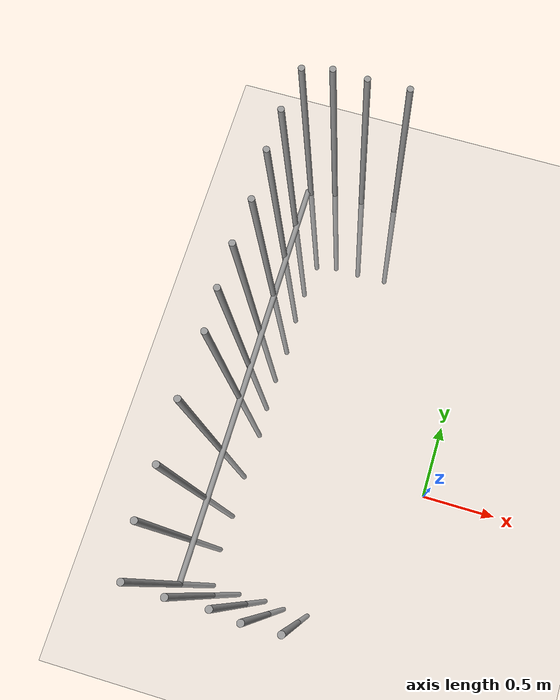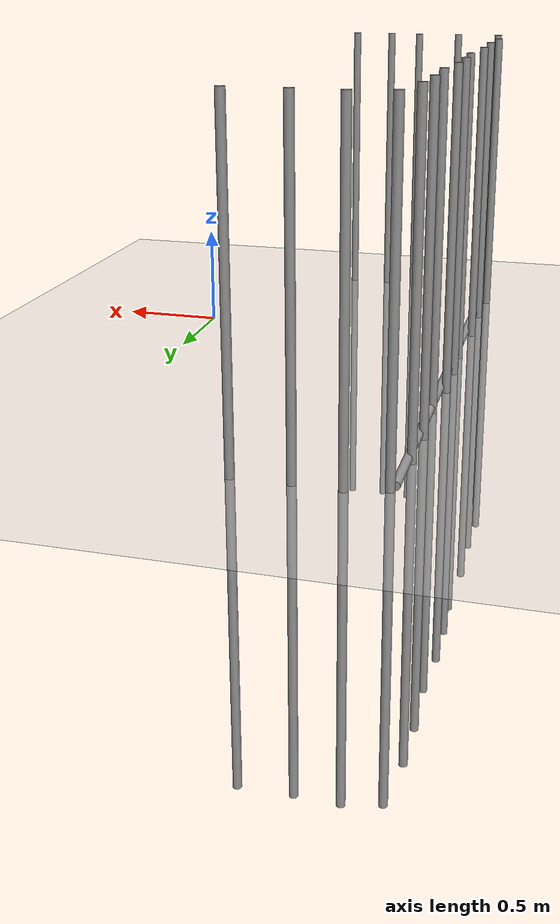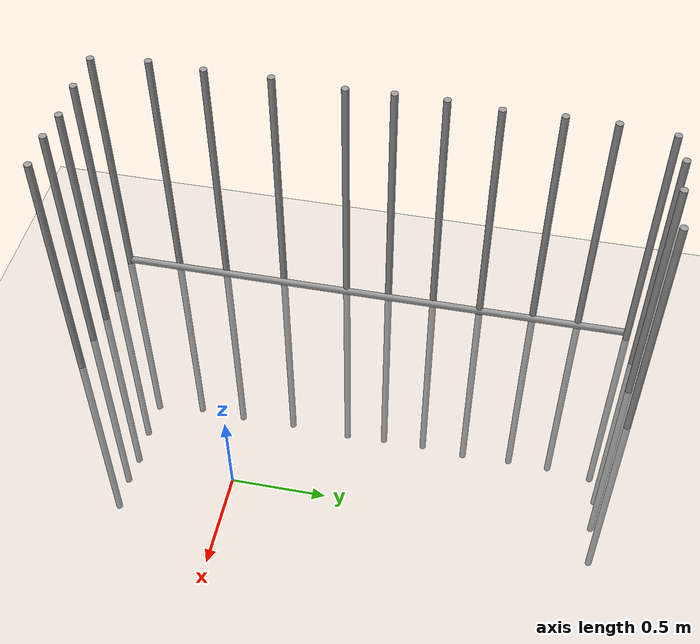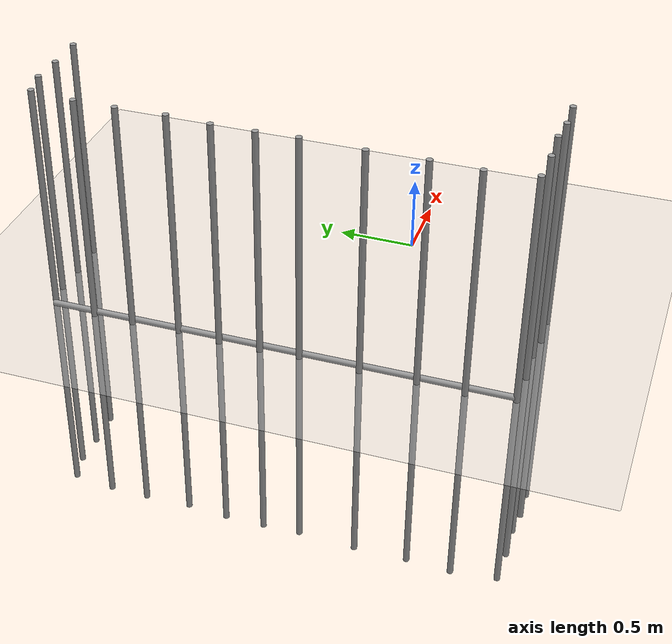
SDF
<sdf version="1.7">
 <world name="default">
  <model name="ground_plane">
   <static>1</static>
   <link name="link">
    <collision name="collision">
     <geometry><plane><normal>0 0 1</normal><size>100 100</size></plane></geometry>
     <surface><friction><ode><mu>100</mu><mu2>50</mu2></ode></friction></surface>
    </collision>
    <visual name="visual">
     <cast_shadows>0</cast_shadows>
     <geometry><plane><normal>0 0 1</normal><size>100 100</size></plane></geometry>
     <material>
      <texture><uri>file:/home/ronin/ws_smart_car/src/world_pkg/world/ground_plane.png</uri></texture>
     </material>
    </visual>
   </link>
  </model>
  <model name="Rebar_cross">
   <static>1</static>
   <link name="link_0">
    <inertial>
     <mass>1</mass>
     <inertia><ixx>0.145833</ixx><ixy>0</ixy><ixz>0</ixz><iyy>0.145833</iyy><iyz>0</iyz><izz>0.125</izz></inertia>
    </inertial>
    <pose>0 0 0 1.57002 1.57 2.4e-05</pose>
    <visual name="visual">
     <geometry><cylinder><radius>0.02</radius><length>3</length></cylinder></geometry>
     <material>
      <lighting>1</lighting>
      <script><uri>file://media/materials/scripts/gazebo.material</uri><name>Gazebo/Grey</name></script>
      <shader type="pixel"><normal_map>__default__</normal_map></shader>
      <ambient>0.3 0.3 0.3 1</ambient>
      <diffuse>0.7 0.7 0.7 1</diffuse>
      <specular>0.01 0.01 0.01 1</specular>
      <emissive>0 0 0 1</emissive>
     </material>
    </visual>
    <collision name="collision">
     <geometry><cylinder><radius>0.02</radius><length>3</length></cylinder></geometry>
     <surface>
      <friction>
       <ode><mu>1</mu><mu2>1</mu2><fdir1>0 0 0</fdir1><slip1>0</slip1><slip2>0</slip2></ode>
       <torsional>
        <coefficient>1</coefficient>
        <patch_radius>0</patch_radius>
        <surface_radius>0</surface_radius>
        <use_patch_radius>1</use_patch_radius>
        <ode><slip>0</slip></ode>
       </torsional>
      </friction>
      <bounce><restitution_coefficient>0</restitution_coefficient><threshold>1e+06</threshold></bounce>
      <contact>
       <collide_without_contact>0</collide_without_contact>
       <collide_without_contact_bitmask>1</collide_without_contact_bitmask>
       <collide_bitmask>1</collide_bitmask>
       <ode>
        <soft_cfm>0</soft_cfm>
        <soft_erp>0.2</soft_erp>
        <kp>1e+13</kp>
        <kd>1</kd>
        <max_vel>0.01</max_vel>
        <min_depth>0</min_depth>
       </ode>
       <bullet>
        <split_impulse>1</split_impulse>
        <split_impulse_penetration_threshold>-0.01</split_impulse_penetration_threshold>
        <soft_cfm>0</soft_cfm>
        <soft_erp>0.2</soft_erp>
        <kp>1e+13</kp>
        <kd>1</kd>
       </bullet>
      </contact>
     </surface>
    </collision>
   </link>
   <static>0</static>
   <pose>-1.42412 0.482138 0.02 1e-06 -0 -4e-06</pose>
  </model>
  <model name="Rebar_vertial_clone_22">
   <static>1</static>
   <link name="link_0">
    <inertial>
     <mass>1</mass>
     <inertia><ixx>0.145833</ixx><ixy>0</ixy><ixz>0</ixz><iyy>0.145833</iyy><iyz>0</iyz><izz>0.125</izz></inertia>
    </inertial>
    <visual name="visual">
     <geometry><cylinder><radius>0.02</radius><length>3</length></cylinder></geometry>
     <material>
      <lighting>1</lighting>
      <script><uri>file://media/materials/scripts/gazebo.material</uri><name>Gazebo/Grey</name></script>
      <shader type="pixel"><normal_map>__default__</normal_map></shader>
      <ambient>0.3 0.3 0.3 1</ambient>
      <diffuse>0.7 0.7 0.7 1</diffuse>
      <specular>0.01 0.01 0.01 1</specular>
      <emissive>0 0 0 1</emissive>
     </material>
    </visual>
    <collision name="collision">
     <geometry><cylinder><radius>0.02</radius><length>3</length></cylinder></geometry>
     <surface>
      <friction>
       <ode><mu>1</mu><mu2>1</mu2><fdir1>0 0 0</fdir1><slip1>0</slip1><slip2>0</slip2></ode>
       <torsional>
        <coefficient>1</coefficient>
        <patch_radius>0</patch_radius>
        <surface_radius>0</surface_radius>
        <use_patch_radius>1</use_patch_radius>
        <ode><slip>0</slip></ode>
       </torsional>
      </friction>
      <bounce><restitution_coefficient>0</restitution_coefficient><threshold>1e+06</threshold></bounce>
      <contact>
       <collide_without_contact>0</collide_without_contact>
       <collide_without_contact_bitmask>1</collide_without_contact_bitmask>
       <collide_bitmask>1</collide_bitmask>
       <ode>
        <soft_cfm>0</soft_cfm>
        <soft_erp>0.2</soft_erp>
        <kp>1e+13</kp>
        <kd>1</kd>
        <max_vel>0.01</max_vel>
        <min_depth>0</min_depth>
       </ode>
       <bullet>
        <split_impulse>1</split_impulse>
        <split_impulse_penetration_threshold>-0.01</split_impulse_penetration_threshold>
        <soft_cfm>0</soft_cfm>
        <soft_erp>0.2</soft_erp>
        <kp>1e+13</kp>
        <kd>1</kd>
       </bullet>
      </contact>
     </surface>
    </collision>
   </link>
   <static>0</static>
   <pose>-0.586605 -1.04477 0.019459 -0.001562 0.001157 0.000983</pose>
  </model>
  <model name="Rebar_vertial_clone_23">
   <static>1</static>
   <link name="link_0">
    <inertial>
     <mass>1</mass>
     <inertia><ixx>0.145833</ixx><ixy>0</ixy><ixz>0</ixz><iyy>0.145833</iyy><iyz>0</iyz><izz>0.125</izz></inertia>
    </inertial>
    <visual name="visual">
     <geometry><cylinder><radius>0.02</radius><length>3</length></cylinder></geometry>
     <material>
      <lighting>1</lighting>
      <script><uri>file://media/materials/scripts/gazebo.material</uri><name>Gazebo/Grey</name></script>
      <shader type="pixel"><normal_map>__default__</normal_map></shader>
      <ambient>0.3 0.3 0.3 1</ambient>
      <diffuse>0.7 0.7 0.7 1</diffuse>
      <specular>0.01 0.01 0.01 1</specular>
      <emissive>0 0 0 1</emissive>
     </material>
    </visual>
    <collision name="collision">
     <geometry><cylinder><radius>0.02</radius><length>3</length></cylinder></geometry>
     <surface>
      <friction>
       <ode><mu>1</mu><mu2>1</mu2><fdir1>0 0 0</fdir1><slip1>0</slip1><slip2>0</slip2></ode>
       <torsional>
        <coefficient>1</coefficient>
        <patch_radius>0</patch_radius>
        <surface_radius>0</surface_radius>
        <use_patch_radius>1</use_patch_radius>
        <ode><slip>0</slip></ode>
       </torsional>
      </friction>
      <bounce><restitution_coefficient>0</restitution_coefficient><threshold>1e+06</threshold></bounce>
      <contact>
       <collide_without_contact>0</collide_without_contact>
       <collide_without_contact_bitmask>1</collide_without_contact_bitmask>
       <collide_bitmask>1</collide_bitmask>
       <ode>
        <soft_cfm>0</soft_cfm>
        <soft_erp>0.2</soft_erp>
        <kp>1e+13</kp>
        <kd>1</kd>
        <max_vel>0.01</max_vel>
        <min_depth>0</min_depth>
       </ode>
       <bullet>
        <split_impulse>1</split_impulse>
        <split_impulse_penetration_threshold>-0.01</split_impulse_penetration_threshold>
        <soft_cfm>0</soft_cfm>
        <soft_erp>0.2</soft_erp>
        <kp>1e+13</kp>
        <kd>1</kd>
       </bullet>
      </contact>
     </surface>
    </collision>
   </link>
   <static>0</static>
   <pose>-0.794408 -1.04841 0.019459 -0.001562 0.001157 0.000983</pose>
  </model>
  <model name="Rebar_vertial_clone_24">
   <static>1</static>
   <link name="link_0">
    <inertial>
     <mass>1</mass>
     <inertia><ixx>0.145833</ixx><ixy>0</ixy><ixz>0</ixz><iyy>0.145833</iyy><iyz>0</iyz><izz>0.125</izz></inertia>
    </inertial>
    <visual name="visual">
     <geometry><cylinder><radius>0.02</radius><length>3</length></cylinder></geometry>
     <material>
      <lighting>1</lighting>
      <script><uri>file://media/materials/scripts/gazebo.material</uri><name>Gazebo/Grey</name></script>
      <shader type="pixel"><normal_map>__default__</normal_map></shader>
      <ambient>0.3 0.3 0.3 1</ambient>
      <diffuse>0.7 0.7 0.7 1</diffuse>
      <specular>0.01 0.01 0.01 1</specular>
      <emissive>0 0 0 1</emissive>
     </material>
    </visual>
    <collision name="collision">
     <geometry><cylinder><radius>0.02</radius><length>3</length></cylinder></geometry>
     <surface>
      <friction>
       <ode><mu>1</mu><mu2>1</mu2><fdir1>0 0 0</fdir1><slip1>0</slip1><slip2>0</slip2></ode>
       <torsional>
        <coefficient>1</coefficient>
        <patch_radius>0</patch_radius>
        <surface_radius>0</surface_radius>
        <use_patch_radius>1</use_patch_radius>
        <ode><slip>0</slip></ode>
       </torsional>
      </friction>
      <bounce><restitution_coefficient>0</restitution_coefficient><threshold>1e+06</threshold></bounce>
      <contact>
       <collide_without_contact>0</collide_without_contact>
       <collide_without_contact_bitmask>1</collide_without_contact_bitmask>
       <collide_bitmask>1</collide_bitmask>
       <ode>
        <soft_cfm>0</soft_cfm>
        <soft_erp>0.2</soft_erp>
        <kp>1e+13</kp>
        <kd>1</kd>
        <max_vel>0.01</max_vel>
        <min_depth>0</min_depth>
       </ode>
       <bullet>
        <split_impulse>1</split_impulse>
        <split_impulse_penetration_threshold>-0.01</split_impulse_penetration_threshold>
        <soft_cfm>0</soft_cfm>
        <soft_erp>0.2</soft_erp>
        <kp>1e+13</kp>
        <kd>1</kd>
       </bullet>
      </contact>
     </surface>
    </collision>
   </link>
   <static>0</static>
   <pose>-0.962909 -1.0295 0.019459 -0.001562 0.001157 0.000983</pose>
  </model>
  <model name="Rebar_vertial_clone_25">
   <static>1</static>
   <link name="link_0">
    <inertial>
     <mass>1</mass>
     <inertia><ixx>0.145833</ixx><ixy>0</ixy><ixz>0</ixz><iyy>0.145833</iyy><iyz>0</iyz><izz>0.125</izz></inertia>
    </inertial>
    <visual name="visual">
     <geometry><cylinder><radius>0.02</radius><length>3</length></cylinder></geometry>
     <material>
      <lighting>1</lighting>
      <script><uri>file://media/materials/scripts/gazebo.material</uri><name>Gazebo/Grey</name></script>
      <shader type="pixel"><normal_map>__default__</normal_map></shader>
      <ambient>0.3 0.3 0.3 1</ambient>
      <diffuse>0.7 0.7 0.7 1</diffuse>
      <specular>0.01 0.01 0.01 1</specular>
      <emissive>0 0 0 1</emissive>
     </material>
    </visual>
    <collision name="collision">
     <geometry><cylinder><radius>0.02</radius><length>3</length></cylinder></geometry>
     <surface>
      <friction>
       <ode><mu>1</mu><mu2>1</mu2><fdir1>0 0 0</fdir1><slip1>0</slip1><slip2>0</slip2></ode>
       <torsional>
        <coefficient>1</coefficient>
        <patch_radius>0</patch_radius>
        <surface_radius>0</surface_radius>
        <use_patch_radius>1</use_patch_radius>
        <ode><slip>0</slip></ode>
       </torsional>
      </friction>
      <bounce><restitution_coefficient>0</restitution_coefficient><threshold>1e+06</threshold></bounce>
      <contact>
       <collide_without_contact>0</collide_without_contact>
       <collide_without_contact_bitmask>1</collide_without_contact_bitmask>
       <collide_bitmask>1</collide_bitmask>
       <ode>
        <soft_cfm>0</soft_cfm>
        <soft_erp>0.2</soft_erp>
        <kp>1e+13</kp>
        <kd>1</kd>
        <max_vel>0.01</max_vel>
        <min_depth>0</min_depth>
       </ode>
       <bullet>
        <split_impulse>1</split_impulse>
        <split_impulse_penetration_threshold>-0.01</split_impulse_penetration_threshold>
        <soft_cfm>0</soft_cfm>
        <soft_erp>0.2</soft_erp>
        <kp>1e+13</kp>
        <kd>1</kd>
       </bullet>
      </contact>
     </surface>
    </collision>
   </link>
   <static>0</static>
   <pose>-1.19146 -1.03655 0.019459 -0.001562 0.001157 0.000983</pose>
  </model>
  <model name="Rebar_vertial_clone_26">
   <static>1</static>
   <link name="link_0">
    <inertial>
     <mass>1</mass>
     <inertia><ixx>0.145833</ixx><ixy>0</ixy><ixz>0</ixz><iyy>0.145833</iyy><iyz>0</iyz><izz>0.125</izz></inertia>
    </inertial>
    <visual name="visual">
     <geometry><cylinder><radius>0.02</radius><length>3</length></cylinder></geometry>
     <material>
      <lighting>1</lighting>
      <script><uri>file://media/materials/scripts/gazebo.material</uri><name>Gazebo/Grey</name></script>
      <shader type="pixel"><normal_map>__default__</normal_map></shader>
      <ambient>0.3 0.3 0.3 1</ambient>
      <diffuse>0.7 0.7 0.7 1</diffuse>
      <specular>0.01 0.01 0.01 1</specular>
      <emissive>0 0 0 1</emissive>
     </material>
    </visual>
    <collision name="collision">
     <geometry><cylinder><radius>0.02</radius><length>3</length></cylinder></geometry>
     <surface>
      <friction>
       <ode><mu>1</mu><mu2>1</mu2><fdir1>0 0 0</fdir1><slip1>0</slip1><slip2>0</slip2></ode>
       <torsional>
        <coefficient>1</coefficient>
        <patch_radius>0</patch_radius>
        <surface_radius>0</surface_radius>
        <use_patch_radius>1</use_patch_radius>
        <ode><slip>0</slip></ode>
       </torsional>
      </friction>
      <bounce><restitution_coefficient>0</restitution_coefficient><threshold>1e+06</threshold></bounce>
      <contact>
       <collide_without_contact>0</collide_without_contact>
       <collide_without_contact_bitmask>1</collide_without_contact_bitmask>
       <collide_bitmask>1</collide_bitmask>
       <ode>
        <soft_cfm>0</soft_cfm>
        <soft_erp>0.2</soft_erp>
        <kp>1e+13</kp>
        <kd>1</kd>
        <max_vel>0.01</max_vel>
        <min_depth>0</min_depth>
       </ode>
       <bullet>
        <split_impulse>1</split_impulse>
        <split_impulse_penetration_threshold>-0.01</split_impulse_penetration_threshold>
        <soft_cfm>0</soft_cfm>
        <soft_erp>0.2</soft_erp>
        <kp>1e+13</kp>
        <kd>1</kd>
       </bullet>
      </contact>
     </surface>
    </collision>
   </link>
   <static>0</static>
   <pose>-1.4229 -1.02769 0.019459 -0.001562 0.001157 0.000983</pose>
  </model>
  <model name="Rebar_vertial_clone_27">
   <static>1</static>
   <link name="link_0">
    <inertial>
     <mass>1</mass>
     <inertia><ixx>0.145833</ixx><ixy>0</ixy><ixz>0</ixz><iyy>0.145833</iyy><iyz>0</iyz><izz>0.125</izz></inertia>
    </inertial>
    <visual name="visual">
     <geometry><cylinder><radius>0.02</radius><length>3</length></cylinder></geometry>
     <material>
      <lighting>1</lighting>
      <script><uri>file://media/materials/scripts/gazebo.material</uri><name>Gazebo/Grey</name></script>
      <shader type="pixel"><normal_map>__default__</normal_map></shader>
      <ambient>0.3 0.3 0.3 1</ambient>
      <diffuse>0.7 0.7 0.7 1</diffuse>
      <specular>0.01 0.01 0.01 1</specular>
      <emissive>0 0 0 1</emissive>
     </material>
    </visual>
    <collision name="collision">
     <geometry><cylinder><radius>0.02</radius><length>3</length></cylinder></geometry>
     <surface>
      <friction>
       <ode><mu>1</mu><mu2>1</mu2><fdir1>0 0 0</fdir1><slip1>0</slip1><slip2>0</slip2></ode>
       <torsional>
        <coefficient>1</coefficient>
        <patch_radius>0</patch_radius>
        <surface_radius>0</surface_radius>
        <use_patch_radius>1</use_patch_radius>
        <ode><slip>0</slip></ode>
       </torsional>
      </friction>
      <bounce><restitution_coefficient>0</restitution_coefficient><threshold>1e+06</threshold></bounce>
      <contact>
       <collide_without_contact>0</collide_without_contact>
       <collide_without_contact_bitmask>1</collide_without_contact_bitmask>
       <collide_bitmask>1</collide_bitmask>
       <ode>
        <soft_cfm>0</soft_cfm>
        <soft_erp>0.2</soft_erp>
        <kp>1e+13</kp>
        <kd>1</kd>
        <max_vel>0.01</max_vel>
        <min_depth>0</min_depth>
       </ode>
       <bullet>
        <split_impulse>1</split_impulse>
        <split_impulse_penetration_threshold>-0.01</split_impulse_penetration_threshold>
        <soft_cfm>0</soft_cfm>
        <soft_erp>0.2</soft_erp>
        <kp>1e+13</kp>
        <kd>1</kd>
       </bullet>
      </contact>
     </surface>
    </collision>
   </link>
   <static>0</static>
   <pose>-1.46033 -0.725347 0.019459 -0.001562 0.001157 0.000983</pose>
  </model>
  <model name="Rebar_vertial_clone_28">
   <static>1</static>
   <link name="link_0">
    <inertial>
     <mass>1</mass>
     <inertia><ixx>0.145833</ixx><ixy>0</ixy><ixz>0</ixz><iyy>0.145833</iyy><iyz>0</iyz><izz>0.125</izz></inertia>
    </inertial>
    <visual name="visual">
     <geometry><cylinder><radius>0.02</radius><length>3</length></cylinder></geometry>
     <material>
      <lighting>1</lighting>
      <script><uri>file://media/materials/scripts/gazebo.material</uri><name>Gazebo/Grey</name></script>
      <shader type="pixel"><normal_map>__default__</normal_map></shader>
      <ambient>0.3 0.3 0.3 1</ambient>
      <diffuse>0.7 0.7 0.7 1</diffuse>
      <specular>0.01 0.01 0.01 1</specular>
      <emissive>0 0 0 1</emissive>
     </material>
    </visual>
    <collision name="collision">
     <geometry><cylinder><radius>0.02</radius><length>3</length></cylinder></geometry>
     <surface>
      <friction>
       <ode><mu>1</mu><mu2>1</mu2><fdir1>0 0 0</fdir1><slip1>0</slip1><slip2>0</slip2></ode>
       <torsional>
        <coefficient>1</coefficient>
        <patch_radius>0</patch_radius>
        <surface_radius>0</surface_radius>
        <use_patch_radius>1</use_patch_radius>
        <ode><slip>0</slip></ode>
       </torsional>
      </friction>
      <bounce><restitution_coefficient>0</restitution_coefficient><threshold>1e+06</threshold></bounce>
      <contact>
       <collide_without_contact>0</collide_without_contact>
       <collide_without_contact_bitmask>1</collide_without_contact_bitmask>
       <collide_bitmask>1</collide_bitmask>
       <ode>
        <soft_cfm>0</soft_cfm>
        <soft_erp>0.2</soft_erp>
        <kp>1e+13</kp>
        <kd>1</kd>
        <max_vel>0.01</max_vel>
        <min_depth>0</min_depth>
       </ode>
       <bullet>
        <split_impulse>1</split_impulse>
        <split_impulse_penetration_threshold>-0.01</split_impulse_penetration_threshold>
        <soft_cfm>0</soft_cfm>
        <soft_erp>0.2</soft_erp>
        <kp>1e+13</kp>
        <kd>1</kd>
       </bullet>
      </contact>
     </surface>
    </collision>
   </link>
   <static>0</static>
   <pose>-1.44844 -0.426685 0.019459 -0.001562 0.001157 0.000983</pose>
  </model>
  <model name="Rebar_vertial_clone_29">
   <static>1</static>
   <link name="link_0">
    <inertial>
     <mass>1</mass>
     <inertia><ixx>0.145833</ixx><ixy>0</ixy><ixz>0</ixz><iyy>0.145833</iyy><iyz>0</iyz><izz>0.125</izz></inertia>
    </inertial>
    <visual name="visual">
     <geometry><cylinder><radius>0.02</radius><length>3</length></cylinder></geometry>
     <material>
      <lighting>1</lighting>
      <script><uri>file://media/materials/scripts/gazebo.material</uri><name>Gazebo/Grey</name></script>
      <shader type="pixel"><normal_map>__default__</normal_map></shader>
      <ambient>0.3 0.3 0.3 1</ambient>
      <diffuse>0.7 0.7 0.7 1</diffuse>
      <specular>0.01 0.01 0.01 1</specular>
      <emissive>0 0 0 1</emissive>
     </material>
    </visual>
    <collision name="collision">
     <geometry><cylinder><radius>0.02</radius><length>3</length></cylinder></geometry>
     <surface>
      <friction>
       <ode><mu>1</mu><mu2>1</mu2><fdir1>0 0 0</fdir1><slip1>0</slip1><slip2>0</slip2></ode>
       <torsional>
        <coefficient>1</coefficient>
        <patch_radius>0</patch_radius>
        <surface_radius>0</surface_radius>
        <use_patch_radius>1</use_patch_radius>
        <ode><slip>0</slip></ode>
       </torsional>
      </friction>
      <bounce><restitution_coefficient>0</restitution_coefficient><threshold>1e+06</threshold></bounce>
      <contact>
       <collide_without_contact>0</collide_without_contact>
       <collide_without_contact_bitmask>1</collide_without_contact_bitmask>
       <collide_bitmask>1</collide_bitmask>
       <ode>
        <soft_cfm>0</soft_cfm>
        <soft_erp>0.2</soft_erp>
        <kp>1e+13</kp>
        <kd>1</kd>
        <max_vel>0.01</max_vel>
        <min_depth>0</min_depth>
       </ode>
       <bullet>
        <split_impulse>1</split_impulse>
        <split_impulse_penetration_threshold>-0.01</split_impulse_penetration_threshold>
        <soft_cfm>0</soft_cfm>
        <soft_erp>0.2</soft_erp>
        <kp>1e+13</kp>
        <kd>1</kd>
       </bullet>
      </contact>
     </surface>
    </collision>
   </link>
   <static>0</static>
   <pose>-1.45536 -0.070402 0.019459 -0.001562 0.001157 0.000983</pose>
  </model>
  <model name="Rebar_vertial_clone_30">
   <static>1</static>
   <link name="link_0">
    <inertial>
     <mass>1</mass>
     <inertia><ixx>0.145833</ixx><ixy>0</ixy><ixz>0</ixz><iyy>0.145833</iyy><iyz>0</iyz><izz>0.125</izz></inertia>
    </inertial>
    <visual name="visual">
     <geometry><cylinder><radius>0.02</radius><length>3</length></cylinder></geometry>
     <material>
      <lighting>1</lighting>
      <script><uri>file://media/materials/scripts/gazebo.material</uri><name>Gazebo/Grey</name></script>
      <shader type="pixel"><normal_map>__default__</normal_map></shader>
      <ambient>0.3 0.3 0.3 1</ambient>
      <diffuse>0.7 0.7 0.7 1</diffuse>
      <specular>0.01 0.01 0.01 1</specular>
      <emissive>0 0 0 1</emissive>
     </material>
    </visual>
    <collision name="collision">
     <geometry><cylinder><radius>0.02</radius><length>3</length></cylinder></geometry>
     <surface>
      <friction>
       <ode><mu>1</mu><mu2>1</mu2><fdir1>0 0 0</fdir1><slip1>0</slip1><slip2>0</slip2></ode>
       <torsional>
        <coefficient>1</coefficient>
        <patch_radius>0</patch_radius>
        <surface_radius>0</surface_radius>
        <use_patch_radius>1</use_patch_radius>
        <ode><slip>0</slip></ode>
       </torsional>
      </friction>
      <bounce><restitution_coefficient>0</restitution_coefficient><threshold>1e+06</threshold></bounce>
      <contact>
       <collide_without_contact>0</collide_without_contact>
       <collide_without_contact_bitmask>1</collide_without_contact_bitmask>
       <collide_bitmask>1</collide_bitmask>
       <ode>
        <soft_cfm>0</soft_cfm>
        <soft_erp>0.2</soft_erp>
        <kp>1e+13</kp>
        <kd>1</kd>
        <max_vel>0.01</max_vel>
        <min_depth>0</min_depth>
       </ode>
       <bullet>
        <split_impulse>1</split_impulse>
        <split_impulse_penetration_threshold>-0.01</split_impulse_penetration_threshold>
        <soft_cfm>0</soft_cfm>
        <soft_erp>0.2</soft_erp>
        <kp>1e+13</kp>
        <kd>1</kd>
       </bullet>
      </contact>
     </surface>
    </collision>
   </link>
   <static>0</static>
   <pose>-1.43884 0.318231 0.019459 -0.001562 0.001157 0.000983</pose>
  </model>
  <model name="Rebar_vertial_clone_31">
   <static>1</static>
   <link name="link_0">
    <inertial>
     <mass>1</mass>
     <inertia><ixx>0.145833</ixx><ixy>0</ixy><ixz>0</ixz><iyy>0.145833</iyy><iyz>0</iyz><izz>0.125</izz></inertia>
    </inertial>
    <visual name="visual">
     <geometry><cylinder><radius>0.02</radius><length>3</length></cylinder></geometry>
     <material>
      <lighting>1</lighting>
      <script><uri>file://media/materials/scripts/gazebo.material</uri><name>Gazebo/Grey</name></script>
      <shader type="pixel"><normal_map>__default__</normal_map></shader>
      <ambient>0.3 0.3 0.3 1</ambient>
      <diffuse>0.7 0.7 0.7 1</diffuse>
      <specular>0.01 0.01 0.01 1</specular>
      <emissive>0 0 0 1</emissive>
     </material>
    </visual>
    <collision name="collision">
     <geometry><cylinder><radius>0.02</radius><length>3</length></cylinder></geometry>
     <surface>
      <friction>
       <ode><mu>1</mu><mu2>1</mu2><fdir1>0 0 0</fdir1><slip1>0</slip1><slip2>0</slip2></ode>
       <torsional>
        <coefficient>1</coefficient>
        <patch_radius>0</patch_radius>
        <surface_radius>0</surface_radius>
        <use_patch_radius>1</use_patch_radius>
        <ode><slip>0</slip></ode>
       </torsional>
      </friction>
      <bounce><restitution_coefficient>0</restitution_coefficient><threshold>1e+06</threshold></bounce>
      <contact>
       <collide_without_contact>0</collide_without_contact>
       <collide_without_contact_bitmask>1</collide_without_contact_bitmask>
       <collide_bitmask>1</collide_bitmask>
       <ode>
        <soft_cfm>0</soft_cfm>
        <soft_erp>0.2</soft_erp>
        <kp>1e+13</kp>
        <kd>1</kd>
        <max_vel>0.01</max_vel>
        <min_depth>0</min_depth>
       </ode>
       <bullet>
        <split_impulse>1</split_impulse>
        <split_impulse_penetration_threshold>-0.01</split_impulse_penetration_threshold>
        <soft_cfm>0</soft_cfm>
        <soft_erp>0.2</soft_erp>
        <kp>1e+13</kp>
        <kd>1</kd>
       </bullet>
      </contact>
     </surface>
    </collision>
   </link>
   <static>0</static>
   <pose>-1.45046 0.569968 0.019459 -0.001562 0.001157 0.000983</pose>
  </model>
  <model name="Rebar_vertial_clone_32">
   <static>1</static>
   <link name="link_0">
    <inertial>
     <mass>1</mass>
     <inertia><ixx>0.145833</ixx><ixy>0</ixy><ixz>0</ixz><iyy>0.145833</iyy><iyz>0</iyz><izz>0.125</izz></inertia>
    </inertial>
    <visual name="visual">
     <geometry><cylinder><radius>0.02</radius><length>3</length></cylinder></geometry>
     <material>
      <lighting>1</lighting>
      <script><uri>file://media/materials/scripts/gazebo.material</uri><name>Gazebo/Grey</name></script>
      <shader type="pixel"><normal_map>__default__</normal_map></shader>
      <ambient>0.3 0.3 0.3 1</ambient>
      <diffuse>0.7 0.7 0.7 1</diffuse>
      <specular>0.01 0.01 0.01 1</specular>
      <emissive>0 0 0 1</emissive>
     </material>
    </visual>
    <collision name="collision">
     <geometry><cylinder><radius>0.02</radius><length>3</length></cylinder></geometry>
     <surface>
      <friction>
       <ode><mu>1</mu><mu2>1</mu2><fdir1>0 0 0</fdir1><slip1>0</slip1><slip2>0</slip2></ode>
       <torsional>
        <coefficient>1</coefficient>
        <patch_radius>0</patch_radius>
        <surface_radius>0</surface_radius>
        <use_patch_radius>1</use_patch_radius>
        <ode><slip>0</slip></ode>
       </torsional>
      </friction>
      <bounce><restitution_coefficient>0</restitution_coefficient><threshold>1e+06</threshold></bounce>
      <contact>
       <collide_without_contact>0</collide_without_contact>
       <collide_without_contact_bitmask>1</collide_without_contact_bitmask>
       <collide_bitmask>1</collide_bitmask>
       <ode>
        <soft_cfm>0</soft_cfm>
        <soft_erp>0.2</soft_erp>
        <kp>1e+13</kp>
        <kd>1</kd>
        <max_vel>0.01</max_vel>
        <min_depth>0</min_depth>
       </ode>
       <bullet>
        <split_impulse>1</split_impulse>
        <split_impulse_penetration_threshold>-0.01</split_impulse_penetration_threshold>
        <soft_cfm>0</soft_cfm>
        <soft_erp>0.2</soft_erp>
        <kp>1e+13</kp>
        <kd>1</kd>
       </bullet>
      </contact>
     </surface>
    </collision>
   </link>
   <static>0</static>
   <pose>-1.45203 0.838209 0.019459 -0.001562 0.001157 0.000983</pose>
  </model>
  <model name="Rebar_vertial_clone_33">
   <static>1</static>
   <link name="link_0">
    <inertial>
     <mass>1</mass>
     <inertia><ixx>0.145833</ixx><ixy>0</ixy><ixz>0</ixz><iyy>0.145833</iyy><iyz>0</iyz><izz>0.125</izz></inertia>
    </inertial>
    <visual name="visual">
     <geometry><cylinder><radius>0.02</radius><length>3</length></cylinder></geometry>
     <material>
      <lighting>1</lighting>
      <script><uri>file://media/materials/scripts/gazebo.material</uri><name>Gazebo/Grey</name></script>
      <shader type="pixel"><normal_map>__default__</normal_map></shader>
      <ambient>0.3 0.3 0.3 1</ambient>
      <diffuse>0.7 0.7 0.7 1</diffuse>
      <specular>0.01 0.01 0.01 1</specular>
      <emissive>0 0 0 1</emissive>
     </material>
    </visual>
    <collision name="collision">
     <geometry><cylinder><radius>0.02</radius><length>3</length></cylinder></geometry>
     <surface>
      <friction>
       <ode><mu>1</mu><mu2>1</mu2><fdir1>0 0 0</fdir1><slip1>0</slip1><slip2>0</slip2></ode>
       <torsional>
        <coefficient>1</coefficient>
        <patch_radius>0</patch_radius>
        <surface_radius>0</surface_radius>
        <use_patch_radius>1</use_patch_radius>
        <ode><slip>0</slip></ode>
       </torsional>
      </friction>
      <bounce><restitution_coefficient>0</restitution_coefficient><threshold>1e+06</threshold></bounce>
      <contact>
       <collide_without_contact>0</collide_without_contact>
       <collide_without_contact_bitmask>1</collide_without_contact_bitmask>
       <collide_bitmask>1</collide_bitmask>
       <ode>
        <soft_cfm>0</soft_cfm>
        <soft_erp>0.2</soft_erp>
        <kp>1e+13</kp>
        <kd>1</kd>
        <max_vel>0.01</max_vel>
        <min_depth>0</min_depth>
       </ode>
       <bullet>
        <split_impulse>1</split_impulse>
        <split_impulse_penetration_threshold>-0.01</split_impulse_penetration_threshold>
        <soft_cfm>0</soft_cfm>
        <soft_erp>0.2</soft_erp>
        <kp>1e+13</kp>
        <kd>1</kd>
       </bullet>
      </contact>
     </surface>
    </collision>
   </link>
   <static>0</static>
   <pose>-1.43156 1.11767 0.019459 -0.001562 0.001157 0.000983</pose>
  </model>
  <model name="Rebar_vertial_clone_34">
   <static>1</static>
   <link name="link_0">
    <inertial>
     <mass>1</mass>
     <inertia><ixx>0.145833</ixx><ixy>0</ixy><ixz>0</ixz><iyy>0.145833</iyy><iyz>0</iyz><izz>0.125</izz></inertia>
    </inertial>
    <visual name="visual">
     <geometry><cylinder><radius>0.02</radius><length>3</length></cylinder></geometry>
     <material>
      <lighting>1</lighting>
      <script><uri>file://media/materials/scripts/gazebo.material</uri><name>Gazebo/Grey</name></script>
      <shader type="pixel"><normal_map>__default__</normal_map></shader>
      <ambient>0.3 0.3 0.3 1</ambient>
      <diffuse>0.7 0.7 0.7 1</diffuse>
      <specular>0.01 0.01 0.01 1</specular>
      <emissive>0 0 0 1</emissive>
     </material>
    </visual>
    <collision name="collision">
     <geometry><cylinder><radius>0.02</radius><length>3</length></cylinder></geometry>
     <surface>
      <friction>
       <ode><mu>1</mu><mu2>1</mu2><fdir1>0 0 0</fdir1><slip1>0</slip1><slip2>0</slip2></ode>
       <torsional>
        <coefficient>1</coefficient>
        <patch_radius>0</patch_radius>
        <surface_radius>0</surface_radius>
        <use_patch_radius>1</use_patch_radius>
        <ode><slip>0</slip></ode>
       </torsional>
      </friction>
      <bounce><restitution_coefficient>0</restitution_coefficient><threshold>1e+06</threshold></bounce>
      <contact>
       <collide_without_contact>0</collide_without_contact>
       <collide_without_contact_bitmask>1</collide_without_contact_bitmask>
       <collide_bitmask>1</collide_bitmask>
       <ode>
        <soft_cfm>0</soft_cfm>
        <soft_erp>0.2</soft_erp>
        <kp>1e+13</kp>
        <kd>1</kd>
        <max_vel>0.01</max_vel>
        <min_depth>0</min_depth>
       </ode>
       <bullet>
        <split_impulse>1</split_impulse>
        <split_impulse_penetration_threshold>-0.01</split_impulse_penetration_threshold>
        <soft_cfm>0</soft_cfm>
        <soft_erp>0.2</soft_erp>
        <kp>1e+13</kp>
        <kd>1</kd>
       </bullet>
      </contact>
     </surface>
    </collision>
   </link>
   <static>0</static>
   <pose>-1.44278 1.42946 0.019459 -0.001562 0.001157 0.000983</pose>
  </model>
  <model name="Rebar_vertial_clone_35">
   <static>1</static>
   <link name="link_0">
    <inertial>
     <mass>1</mass>
     <inertia><ixx>0.145833</ixx><ixy>0</ixy><ixz>0</ixz><iyy>0.145833</iyy><iyz>0</iyz><izz>0.125</izz></inertia>
    </inertial>
    <visual name="visual">
     <geometry><cylinder><radius>0.02</radius><length>3</length></cylinder></geometry>
     <material>
      <lighting>1</lighting>
      <script><uri>file://media/materials/scripts/gazebo.material</uri><name>Gazebo/Grey</name></script>
      <shader type="pixel"><normal_map>__default__</normal_map></shader>
      <ambient>0.3 0.3 0.3 1</ambient>
      <diffuse>0.7 0.7 0.7 1</diffuse>
      <specular>0.01 0.01 0.01 1</specular>
      <emissive>0 0 0 1</emissive>
     </material>
    </visual>
    <collision name="collision">
     <geometry><cylinder><radius>0.02</radius><length>3</length></cylinder></geometry>
     <surface>
      <friction>
       <ode><mu>1</mu><mu2>1</mu2><fdir1>0 0 0</fdir1><slip1>0</slip1><slip2>0</slip2></ode>
       <torsional>
        <coefficient>1</coefficient>
        <patch_radius>0</patch_radius>
        <surface_radius>0</surface_radius>
        <use_patch_radius>1</use_patch_radius>
        <ode><slip>0</slip></ode>
       </torsional>
      </friction>
      <bounce><restitution_coefficient>0</restitution_coefficient><threshold>1e+06</threshold></bounce>
      <contact>
       <collide_without_contact>0</collide_without_contact>
       <collide_without_contact_bitmask>1</collide_without_contact_bitmask>
       <collide_bitmask>1</collide_bitmask>
       <ode>
        <soft_cfm>0</soft_cfm>
        <soft_erp>0.2</soft_erp>
        <kp>1e+13</kp>
        <kd>1</kd>
        <max_vel>0.01</max_vel>
        <min_depth>0</min_depth>
       </ode>
       <bullet>
        <split_impulse>1</split_impulse>
        <split_impulse_penetration_threshold>-0.01</split_impulse_penetration_threshold>
        <soft_cfm>0</soft_cfm>
        <soft_erp>0.2</soft_erp>
        <kp>1e+13</kp>
        <kd>1</kd>
       </bullet>
      </contact>
     </surface>
    </collision>
   </link>
   <static>0</static>
   <pose>-1.43915 1.69383 0.019459 -0.001562 0.001157 0.000983</pose>
  </model>
  <model name="Rebar_vertial_clone_36">
   <static>1</static>
   <link name="link_0">
    <inertial>
     <mass>1</mass>
     <inertia><ixx>0.145833</ixx><ixy>0</ixy><ixz>0</ixz><iyy>0.145833</iyy><iyz>0</iyz><izz>0.125</izz></inertia>
    </inertial>
    <visual name="visual">
     <geometry><cylinder><radius>0.02</radius><length>3</length></cylinder></geometry>
     <material>
      <lighting>1</lighting>
      <script><uri>file://media/materials/scripts/gazebo.material</uri><name>Gazebo/Grey</name></script>
      <shader type="pixel"><normal_map>__default__</normal_map></shader>
      <ambient>0.3 0.3 0.3 1</ambient>
      <diffuse>0.7 0.7 0.7 1</diffuse>
      <specular>0.01 0.01 0.01 1</specular>
      <emissive>0 0 0 1</emissive>
     </material>
    </visual>
    <collision name="collision">
     <geometry><cylinder><radius>0.02</radius><length>3</length></cylinder></geometry>
     <surface>
      <friction>
       <ode><mu>1</mu><mu2>1</mu2><fdir1>0 0 0</fdir1><slip1>0</slip1><slip2>0</slip2></ode>
       <torsional>
        <coefficient>1</coefficient>
        <patch_radius>0</patch_radius>
        <surface_radius>0</surface_radius>
        <use_patch_radius>1</use_patch_radius>
        <ode><slip>0</slip></ode>
       </torsional>
      </friction>
      <bounce><restitution_coefficient>0</restitution_coefficient><threshold>1e+06</threshold></bounce>
      <contact>
       <collide_without_contact>0</collide_without_contact>
       <collide_without_contact_bitmask>1</collide_without_contact_bitmask>
       <collide_bitmask>1</collide_bitmask>
       <ode>
        <soft_cfm>0</soft_cfm>
        <soft_erp>0.2</soft_erp>
        <kp>1e+13</kp>
        <kd>1</kd>
        <max_vel>0.01</max_vel>
        <min_depth>0</min_depth>
       </ode>
       <bullet>
        <split_impulse>1</split_impulse>
        <split_impulse_penetration_threshold>-0.01</split_impulse_penetration_threshold>
        <soft_cfm>0</soft_cfm>
        <soft_erp>0.2</soft_erp>
        <kp>1e+13</kp>
        <kd>1</kd>
       </bullet>
      </contact>
     </surface>
    </collision>
   </link>
   <static>0</static>
   <pose>-1.40511 1.98021 0.019459 -0.001562 0.001157 0.000983</pose>
  </model>
  <model name="Rebar_vertial_clone_37">
   <static>1</static>
   <link name="link_0">
    <inertial>
     <mass>1</mass>
     <inertia><ixx>0.145833</ixx><ixy>0</ixy><ixz>0</ixz><iyy>0.145833</iyy><iyz>0</iyz><izz>0.125</izz></inertia>
    </inertial>
    <visual name="visual">
     <geometry><cylinder><radius>0.02</radius><length>3</length></cylinder></geometry>
     <material>
      <lighting>1</lighting>
      <script><uri>file://media/materials/scripts/gazebo.material</uri><name>Gazebo/Grey</name></script>
      <shader type="pixel"><normal_map>__default__</normal_map></shader>
      <ambient>0.3 0.3 0.3 1</ambient>
      <diffuse>0.7 0.7 0.7 1</diffuse>
      <specular>0.01 0.01 0.01 1</specular>
      <emissive>0 0 0 1</emissive>
     </material>
    </visual>
    <collision name="collision">
     <geometry><cylinder><radius>0.02</radius><length>3</length></cylinder></geometry>
     <surface>
      <friction>
       <ode><mu>1</mu><mu2>1</mu2><fdir1>0 0 0</fdir1><slip1>0</slip1><slip2>0</slip2></ode>
       <torsional>
        <coefficient>1</coefficient>
        <patch_radius>0</patch_radius>
        <surface_radius>0</surface_radius>
        <use_patch_radius>1</use_patch_radius>
        <ode><slip>0</slip></ode>
       </torsional>
      </friction>
      <bounce><restitution_coefficient>0</restitution_coefficient><threshold>1e+06</threshold></bounce>
      <contact>
       <collide_without_contact>0</collide_without_contact>
       <collide_without_contact_bitmask>1</collide_without_contact_bitmask>
       <collide_bitmask>1</collide_bitmask>
       <ode>
        <soft_cfm>0</soft_cfm>
        <soft_erp>0.2</soft_erp>
        <kp>1e+13</kp>
        <kd>1</kd>
        <max_vel>0.01</max_vel>
        <min_depth>0</min_depth>
       </ode>
       <bullet>
        <split_impulse>1</split_impulse>
        <split_impulse_penetration_threshold>-0.01</split_impulse_penetration_threshold>
        <soft_cfm>0</soft_cfm>
        <soft_erp>0.2</soft_erp>
        <kp>1e+13</kp>
        <kd>1</kd>
       </bullet>
      </contact>
     </surface>
    </collision>
   </link>
   <static>0</static>
   <pose>-1.22904 2.02368 0.019459 -0.001562 0.001157 0.000983</pose>
  </model>
  <model name="Rebar_vertial_clone_38">
   <static>1</static>
   <link name="link_0">
    <inertial>
     <mass>1</mass>
     <inertia><ixx>0.145833</ixx><ixy>0</ixy><ixz>0</ixz><iyy>0.145833</iyy><iyz>0</iyz><izz>0.125</izz></inertia>
    </inertial>
    <visual name="visual">
     <geometry><cylinder><radius>0.02</radius><length>3</length></cylinder></geometry>
     <material>
      <lighting>1</lighting>
      <script><uri>file://media/materials/scripts/gazebo.material</uri><name>Gazebo/Grey</name></script>
      <shader type="pixel"><normal_map>__default__</normal_map></shader>
      <ambient>0.3 0.3 0.3 1</ambient>
      <diffuse>0.7 0.7 0.7 1</diffuse>
      <specular>0.01 0.01 0.01 1</specular>
      <emissive>0 0 0 1</emissive>
     </material>
    </visual>
    <collision name="collision">
     <geometry><cylinder><radius>0.02</radius><length>3</length></cylinder></geometry>
     <surface>
      <friction>
       <ode><mu>1</mu><mu2>1</mu2><fdir1>0 0 0</fdir1><slip1>0</slip1><slip2>0</slip2></ode>
       <torsional>
        <coefficient>1</coefficient>
        <patch_radius>0</patch_radius>
        <surface_radius>0</surface_radius>
        <use_patch_radius>1</use_patch_radius>
        <ode><slip>0</slip></ode>
       </torsional>
      </friction>
      <bounce><restitution_coefficient>0</restitution_coefficient><threshold>1e+06</threshold></bounce>
      <contact>
       <collide_without_contact>0</collide_without_contact>
       <collide_without_contact_bitmask>1</collide_without_contact_bitmask>
       <collide_bitmask>1</collide_bitmask>
       <ode>
        <soft_cfm>0</soft_cfm>
        <soft_erp>0.2</soft_erp>
        <kp>1e+13</kp>
        <kd>1</kd>
        <max_vel>0.01</max_vel>
        <min_depth>0</min_depth>
       </ode>
       <bullet>
        <split_impulse>1</split_impulse>
        <split_impulse_penetration_threshold>-0.01</split_impulse_penetration_threshold>
        <soft_cfm>0</soft_cfm>
        <soft_erp>0.2</soft_erp>
        <kp>1e+13</kp>
        <kd>1</kd>
       </bullet>
      </contact>
     </surface>
    </collision>
   </link>
   <static>0</static>
   <pose>-1.01952 2.01716 0.019459 -0.001562 0.001157 0.000983</pose>
  </model>
  <model name="Rebar_vertial_clone_39">
   <static>1</static>
   <link name="link_0">
    <inertial>
     <mass>1</mass>
     <inertia><ixx>0.145833</ixx><ixy>0</ixy><ixz>0</ixz><iyy>0.145833</iyy><iyz>0</iyz><izz>0.125</izz></inertia>
    </inertial>
    <visual name="visual">
     <geometry><cylinder><radius>0.02</radius><length>3</length></cylinder></geometry>
     <material>
      <lighting>1</lighting>
      <script><uri>file://media/materials/scripts/gazebo.material</uri><name>Gazebo/Grey</name></script>
      <shader type="pixel"><normal_map>__default__</normal_map></shader>
      <ambient>0.3 0.3 0.3 1</ambient>
      <diffuse>0.7 0.7 0.7 1</diffuse>
      <specular>0.01 0.01 0.01 1</specular>
      <emissive>0 0 0 1</emissive>
     </material>
    </visual>
    <collision name="collision">
     <geometry><cylinder><radius>0.02</radius><length>3</length></cylinder></geometry>
     <surface>
      <friction>
       <ode><mu>1</mu><mu2>1</mu2><fdir1>0 0 0</fdir1><slip1>0</slip1><slip2>0</slip2></ode>
       <torsional>
        <coefficient>1</coefficient>
        <patch_radius>0</patch_radius>
        <surface_radius>0</surface_radius>
        <use_patch_radius>1</use_patch_radius>
        <ode><slip>0</slip></ode>
       </torsional>
      </friction>
      <bounce><restitution_coefficient>0</restitution_coefficient><threshold>1e+06</threshold></bounce>
      <contact>
       <collide_without_contact>0</collide_without_contact>
       <collide_without_contact_bitmask>1</collide_without_contact_bitmask>
       <collide_bitmask>1</collide_bitmask>
       <ode>
        <soft_cfm>0</soft_cfm>
        <soft_erp>0.2</soft_erp>
        <kp>1e+13</kp>
        <kd>1</kd>
        <max_vel>0.01</max_vel>
        <min_depth>0</min_depth>
       </ode>
       <bullet>
        <split_impulse>1</split_impulse>
        <split_impulse_penetration_threshold>-0.01</split_impulse_penetration_threshold>
        <soft_cfm>0</soft_cfm>
        <soft_erp>0.2</soft_erp>
        <kp>1e+13</kp>
        <kd>1</kd>
       </bullet>
      </contact>
     </surface>
    </collision>
   </link>
   <static>0</static>
   <pose>-0.76674 2.02313 0.019459 -0.001562 0.001157 0.000983</pose>
  </model>
 </world>
</sdf>
